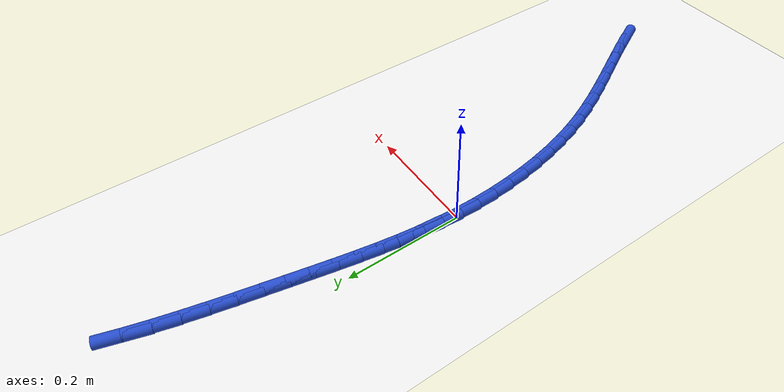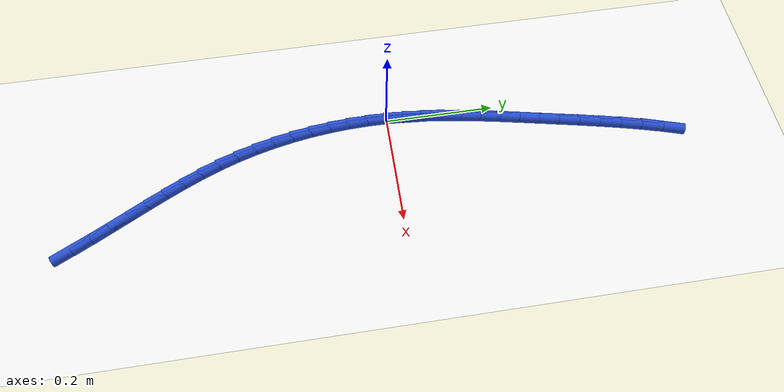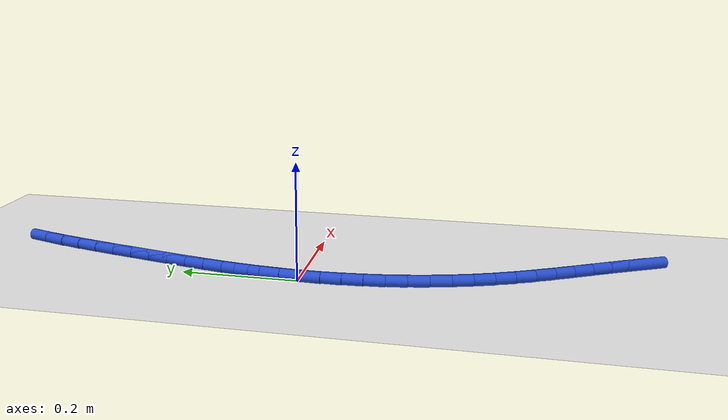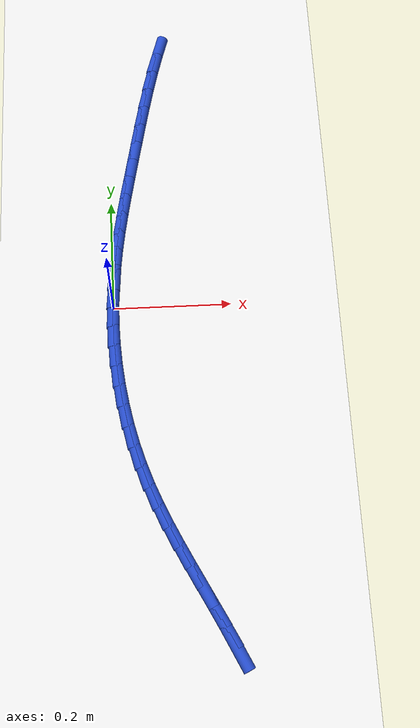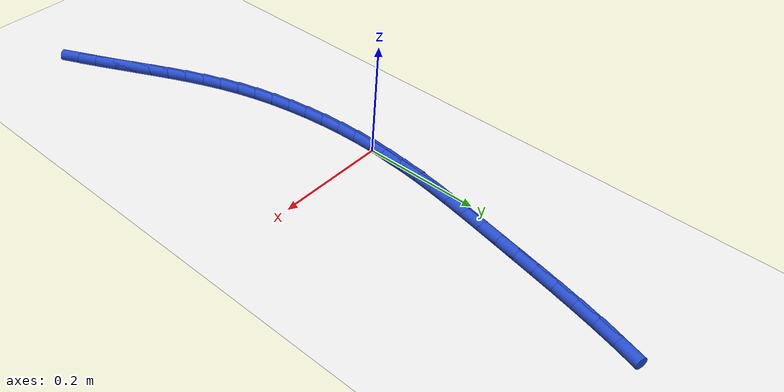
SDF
<sdf version="1.6">
 <world name="default">
  <model name="ground_plane">
   <static>1</static>
   <link name="link">
    <collision name="collision">
     <geometry><plane><normal>0 0 1</normal><size>100 100</size></plane></geometry>
     <surface><friction><ode><mu>100</mu><mu2>50</mu2></ode></friction></surface>
    </collision>
    <visual name="visual">
     <cast_shadows>0</cast_shadows>
     <geometry><plane><normal>0 0 1</normal><size>100 100</size></plane></geometry>
     <material>
      <script><uri>file://media/materials/scripts/gazebo.material</uri><name>Gazebo/WhiteGlow</name></script>
     </material>
    </visual>
   </link>
  </model>
  <model name="line">
   <link name="link_0">
    <pose>-5.204170427930421e-18 4.163336342344337e-17 0.01 0 1.57 1.5208849543965577</pose>
    <collision name="collision">
     <geometry><cylinder><radius>0.01</radius><length>0.08</length></cylinder></geometry>
    </collision>
    <visual name="visual">
     <material>
      <script><name>Gazebo/Blue</name><uri>file://media/materials/scripts/gazebo.material</uri></script>
     </material>
     <geometry><cylinder><radius>0.01</radius><length>0.08</length></cylinder></geometry>
    </visual>
   </link>
   <link name="link_1">
    <pose>0.0017199390480877182 0.034431243268915154 0.01 0 1.57 1.4837303100532857</pose>
    <collision name="collision">
     <geometry><cylinder><radius>0.01</radius><length>0.08</length></cylinder></geometry>
    </collision>
    <visual name="visual">
     <material>
      <script><name>Gazebo/Blue</name><uri>file://media/materials/scripts/gazebo.material</uri></script>
     </material>
     <geometry><cylinder><radius>0.01</radius><length>0.08</length></cylinder></geometry>
    </visual>
   </link>
   <link name="link_2">
    <pose>0.004702173828759835 0.06859721846147225 0.01 0 1.57 1.4511710865603584</pose>
    <collision name="collision">
     <geometry><cylinder><radius>0.01</radius><length>0.08</length></cylinder></geometry>
    </collision>
    <visual name="visual">
     <material>
      <script><name>Gazebo/Blue</name><uri>file://media/materials/scripts/gazebo.material</uri></script>
     </material>
     <geometry><cylinder><radius>0.01</radius><length>0.08</length></cylinder></geometry>
    </visual>
   </link>
   <link name="link_3">
    <pose>0.00879488424225968 0.10264663191672037 0.01 0 1.57 1.4236534798670728</pose>
    <collision name="collision">
     <geometry><cylinder><radius>0.01</radius><length>0.08</length></cylinder></geometry>
    </collision>
    <visual name="visual">
     <material>
      <script><name>Gazebo/Blue</name><uri>file://media/materials/scripts/gazebo.material</uri></script>
     </material>
     <geometry><cylinder><radius>0.01</radius><length>0.08</length></cylinder></geometry>
    </visual>
   </link>
   <link name="link_4">
    <pose>0.0138462501888306 0.1367281899737084 0.01 0 1.57 1.4014534340639775</pose>
    <collision name="collision">
     <geometry><cylinder><radius>0.01</radius><length>0.08</length></cylinder></geometry>
    </collision>
    <visual name="visual">
     <material>
      <script><name>Gazebo/Blue</name><uri>file://media/materials/scripts/gazebo.material</uri></script>
     </material>
     <geometry><cylinder><radius>0.01</radius><length>0.08</length></cylinder></geometry>
    </visual>
   </link>
   <link name="link_5">
    <pose>0.019704451568715944 0.17099059897148555 0.01 0 1.57 1.3846882370910742</pose>
    <collision name="collision">
     <geometry><cylinder><radius>0.01</radius><length>0.08</length></cylinder></geometry>
    </collision>
    <visual name="visual">
     <material>
      <script><name>Gazebo/Blue</name><uri>file://media/materials/scripts/gazebo.material</uri></script>
     </material>
     <geometry><cylinder><radius>0.01</radius><length>0.08</length></cylinder></geometry>
    </visual>
   </link>
   <link name="link_6">
    <pose>0.026217668282159032 0.20558256524910065 0.01 0 1.57 1.373335898831359</pose>
    <collision name="collision">
     <geometry><cylinder><radius>0.01</radius><length>0.08</length></cylinder></geometry>
    </collision>
    <visual name="visual">
     <material>
      <script><name>Gazebo/Blue</name><uri>file://media/materials/scripts/gazebo.material</uri></script>
     </material>
     <geometry><cylinder><radius>0.01</radius><length>0.08</length></cylinder></geometry>
    </visual>
   </link>
   <link name="link_7">
    <pose>0.03323408022940323 0.24065279514560292 0.01 0 1.57 1.3672576519073827</pose>
    <collision name="collision">
     <geometry><cylinder><radius>0.01</radius><length>0.08</length></cylinder></geometry>
    </collision>
    <visual name="visual">
     <material>
      <script><name>Gazebo/Blue</name><uri>file://media/materials/scripts/gazebo.material</uri></script>
     </material>
     <geometry><cylinder><radius>0.01</radius><length>0.08</length></cylinder></geometry>
    </visual>
   </link>
   <link name="link_8">
    <pose>0.04060186731069186 0.2763499950000411 0.01 0 1.57 1.3660140015924838</pose>
    <collision name="collision">
     <geometry><cylinder><radius>0.01</radius><length>0.08</length></cylinder></geometry>
    </collision>
    <visual name="visual">
     <material>
      <script><name>Gazebo/Blue</name><uri>file://media/materials/scripts/gazebo.material</uri></script>
     </material>
     <geometry><cylinder><radius>0.01</radius><length>0.08</length></cylinder></geometry>
    </visual>
   </link>
   <link name="link_9">
    <pose>0.04817533305242036 0.31281457818273206 0.01 0 1.57 1.3645071685165557</pose>
    <collision name="collision">
     <geometry><cylinder><radius>0.01</radius><length>0.08</length></cylinder></geometry>
    </collision>
    <visual name="visual">
     <material>
      <script><name>Gazebo/Blue</name><uri>file://media/materials/scripts/gazebo.material</uri></script>
     </material>
     <geometry><cylinder><radius>0.01</radius><length>0.08</length></cylinder></geometry>
    </visual>
   </link>
   <link name="link_10">
    <pose>0.05595473940783197 0.34998929271995866 0.01 0 1.57 1.3578804444189165</pose>
    <collision name="collision">
     <geometry><cylinder><radius>0.01</radius><length>0.08</length></cylinder></geometry>
    </collision>
    <visual name="visual">
     <material>
      <script><name>Gazebo/Blue</name><uri>file://media/materials/scripts/gazebo.material</uri></script>
     </material>
     <geometry><cylinder><radius>0.01</radius><length>0.08</length></cylinder></geometry>
    </visual>
   </link>
   <link name="link_11">
    <pose>0.06408920629358508 0.38761529457383775 0.01 0 1.57 1.3460044763426808</pose>
    <collision name="collision">
     <geometry><cylinder><radius>0.01</radius><length>0.08</length></cylinder></geometry>
    </collision>
    <visual name="visual">
     <material>
      <script><name>Gazebo/Blue</name><uri>file://media/materials/scripts/gazebo.material</uri></script>
     </material>
     <geometry><cylinder><radius>0.01</radius><length>0.08</length></cylinder></geometry>
    </visual>
   </link>
   <link name="link_12">
    <pose>0.07273455723014616 0.4254246612984661 0.01 0 1.57 1.3287923210549824</pose>
    <collision name="collision">
     <geometry><cylinder><radius>0.01</radius><length>0.08</length></cylinder></geometry>
    </collision>
    <visual name="visual">
     <material>
      <script><name>Gazebo/Blue</name><uri>file://media/materials/scripts/gazebo.material</uri></script>
     </material>
     <geometry><cylinder><radius>0.01</radius><length>0.08</length></cylinder></geometry>
    </visual>
   </link>
   <link name="link_13">
    <pose>0.08204661573798165 0.4631494704479401 0.01 0 1.57 1.3059859587979765</pose>
    <collision name="collision">
     <geometry><cylinder><radius>0.01</radius><length>0.08</length></cylinder></geometry>
    </collision>
    <visual name="visual">
     <material>
      <script><name>Gazebo/Blue</name><uri>file://media/materials/scripts/gazebo.material</uri></script>
     </material>
     <geometry><cylinder><radius>0.01</radius><length>0.08</length></cylinder></geometry>
    </visual>
   </link>
   <link name="link_14">
    <pose>0.09218120533755805 0.5005217995763565 0.01 0 1.57 1.2771600559592506</pose>
    <collision name="collision">
     <geometry><cylinder><radius>0.01</radius><length>0.08</length></cylinder></geometry>
    </collision>
    <visual name="visual">
     <material>
      <script><name>Gazebo/Blue</name><uri>file://media/materials/scripts/gazebo.material</uri></script>
     </material>
     <geometry><cylinder><radius>0.01</radius><length>0.08</length></cylinder></geometry>
    </visual>
   </link>
   <link name="link_193">
    <pose>0.1735288714875021 -0.5628341644015661 0.01 0 1.57 -1.1130954975053393</pose>
    <collision name="collision">
     <geometry><cylinder><radius>0.01</radius><length>0.08</length></cylinder></geometry>
    </collision>
    <visual name="visual">
     <material>
      <script><name>Gazebo/Blue</name><uri>file://media/materials/scripts/gazebo.material</uri></script>
     </material>
     <geometry><cylinder><radius>0.01</radius><length>0.08</length></cylinder></geometry>
    </visual>
   </link>
   <link name="link_194">
    <pose>0.15780180485975592 -0.5309067698016066 0.01 0 1.57 -1.0959766315829762</pose>
    <collision name="collision">
     <geometry><cylinder><radius>0.01</radius><length>0.08</length></cylinder></geometry>
    </collision>
    <visual name="visual">
     <material>
      <script><name>Gazebo/Blue</name><uri>file://media/materials/scripts/gazebo.material</uri></script>
     </material>
     <geometry><cylinder><radius>0.01</radius><length>0.08</length></cylinder></geometry>
    </visual>
   </link>
   <link name="link_195">
    <pose>0.14162732772343317 -0.49944161773603957 0.01 0 1.57 -1.0877248462134534</pose>
    <collision name="collision">
     <geometry><cylinder><radius>0.01</radius><length>0.08</length></cylinder></geometry>
    </collision>
    <visual name="visual">
     <material>
      <script><name>Gazebo/Blue</name><uri>file://media/materials/scripts/gazebo.material</uri></script>
     </material>
     <geometry><cylinder><radius>0.01</radius><length>0.08</length></cylinder></geometry>
    </visual>
   </link>
   <link name="link_196">
    <pose>0.12527695090095883 -0.4682696062689888 0.01 0 1.57 -1.0884968248988276</pose>
    <collision name="collision">
     <geometry><cylinder><radius>0.01</radius><length>0.08</length></cylinder></geometry>
    </collision>
    <visual name="visual">
     <material>
      <script><name>Gazebo/Blue</name><uri>file://media/materials/scripts/gazebo.material</uri></script>
     </material>
     <geometry><cylinder><radius>0.01</radius><length>0.08</length></cylinder></geometry>
    </visual>
   </link>
   <link name="link_197">
    <pose>0.10902218521475901 -0.4372216334645804 0.01 0 1.57 -1.0984103862782952</pose>
    <collision name="collision">
     <geometry><cylinder><radius>0.01</radius><length>0.08</length></cylinder></geometry>
    </collision>
    <visual name="visual">
     <material>
      <script><name>Gazebo/Blue</name><uri>file://media/materials/scripts/gazebo.material</uri></script>
     </material>
     <geometry><cylinder><radius>0.01</radius><length>0.08</length></cylinder></geometry>
    </visual>
   </link>
   <link name="link_198">
    <pose>0.09313454148725867 -0.4061285973869383 0.01 0 1.57 -1.1175406365261136</pose>
    <collision name="collision">
     <geometry><cylinder><radius>0.01</radius><length>0.08</length></cylinder></geometry>
    </collision>
    <visual name="visual">
     <material>
      <script><name>Gazebo/Blue</name><uri>file://media/materials/scripts/gazebo.material</uri></script>
     </material>
     <geometry><cylinder><radius>0.01</radius><length>0.08</length></cylinder></geometry>
    </visual>
   </link>
   <link name="link_199">
    <pose>0.07788553054088311 -0.3748213961001874 0.01 0 1.57 -1.1458933608980582</pose>
    <collision name="collision">
     <geometry><cylinder><radius>0.01</radius><length>0.08</length></cylinder></geometry>
    </collision>
    <visual name="visual">
     <material>
      <script><name>Gazebo/Blue</name><uri>file://media/materials/scripts/gazebo.material</uri></script>
     </material>
     <geometry><cylinder><radius>0.01</radius><length>0.08</length></cylinder></geometry>
    </visual>
   </link>
   <link name="link_200">
    <pose>0.06354666319805781 -0.34313092766845243 0.01 0 1.57 -1.1833557080597568</pose>
    <collision name="collision">
     <geometry><cylinder><radius>0.01</radius><length>0.08</length></cylinder></geometry>
    </collision>
    <visual name="visual">
     <material>
      <script><name>Gazebo/Blue</name><uri>file://media/materials/scripts/gazebo.material</uri></script>
     </material>
     <geometry><cylinder><radius>0.01</radius><length>0.08</length></cylinder></geometry>
    </visual>
   </link>
   <link name="link_201">
    <pose>0.05038945028120804 -0.31088809015585805 0.01 0 1.57 -1.2293914064668634</pose>
    <collision name="collision">
     <geometry><cylinder><radius>0.01</radius><length>0.08</length></cylinder></geometry>
    </collision>
    <visual name="visual">
     <material>
      <script><name>Gazebo/Blue</name><uri>file://media/materials/scripts/gazebo.material</uri></script>
     </material>
     <geometry><cylinder><radius>0.01</radius><length>0.08</length></cylinder></geometry>
    </visual>
   </link>
   <link name="link_202">
    <pose>0.03867904386862256 -0.2779305878666873 0.01 0 1.57 -1.2783960324914705</pose>
    <collision name="collision">
     <geometry><cylinder><radius>0.01</radius><length>0.08</length></cylinder></geometry>
    </collision>
    <visual name="visual">
     <material>
      <script><name>Gazebo/Blue</name><uri>file://media/materials/scripts/gazebo.material</uri></script>
     </material>
     <geometry><cylinder><radius>0.01</radius><length>0.08</length></cylinder></geometry>
    </visual>
   </link>
   <link name="link_203">
    <pose>0.028539395912640455 -0.24424726217680612 0.01 0 1.57 -1.325395930679693</pose>
    <collision name="collision">
     <geometry><cylinder><radius>0.01</radius><length>0.08</length></cylinder></geometry>
    </collision>
    <visual name="visual">
     <material>
      <script><name>Gazebo/Blue</name><uri>file://media/materials/scripts/gazebo.material</uri></script>
     </material>
     <geometry><cylinder><radius>0.01</radius><length>0.08</length></cylinder></geometry>
    </visual>
   </link>
   <link name="link_204">
    <pose>0.019956008612683644 -0.20997514760338024 0.01 0 1.57 -1.3705247447997142</pose>
    <collision name="collision">
     <geometry><cylinder><radius>0.01</radius><length>0.08</length></cylinder></geometry>
    </collision>
    <visual name="visual">
     <material>
      <script><name>Gazebo/Blue</name><uri>file://media/materials/scripts/gazebo.material</uri></script>
     </material>
     <geometry><cylinder><radius>0.01</radius><length>0.08</length></cylinder></geometry>
    </visual>
   </link>
   <link name="link_205">
    <pose>0.012908575565368662 -0.17525749604625984 0.01 0 1.57 -1.4141297716428867</pose>
    <collision name="collision">
     <geometry><cylinder><radius>0.01</radius><length>0.08</length></cylinder></geometry>
    </collision>
    <visual name="visual">
     <material>
      <script><name>Gazebo/Blue</name><uri>file://media/materials/scripts/gazebo.material</uri></script>
     </material>
     <geometry><cylinder><radius>0.01</radius><length>0.08</length></cylinder></geometry>
    </visual>
   </link>
   <link name="link_206">
    <pose>0.007376790367312061 -0.1402375594052953 0.01 0 1.57 -1.4565556683536205</pose>
    <collision name="collision">
     <geometry><cylinder><radius>0.01</radius><length>0.08</length></cylinder></geometry>
    </collision>
    <visual name="visual">
     <material>
      <script><name>Gazebo/Blue</name><uri>file://media/materials/scripts/gazebo.material</uri></script>
     </material>
     <geometry><cylinder><radius>0.01</radius><length>0.08</length></cylinder></geometry>
    </visual>
   </link>
   <link name="link_207">
    <pose>0.0033403466151303556 -0.10505858958033684 0.01 0 1.57 -1.4981462683494917</pose>
    <collision name="collision">
     <geometry><cylinder><radius>0.01</radius><length>0.08</length></cylinder></geometry>
    </collision>
    <visual name="visual">
     <material>
      <script><name>Gazebo/Blue</name><uri>file://media/materials/scripts/gazebo.material</uri></script>
     </material>
     <geometry><cylinder><radius>0.01</radius><length>0.08</length></cylinder></geometry>
    </visual>
   </link>
   <link name="link_208">
    <pose>0.0007789379054400909 -0.06986383847123465 0.01 0 1.57 -1.539248032402427</pose>
    <collision name="collision">
     <geometry><cylinder><radius>0.01</radius><length>0.08</length></cylinder></geometry>
    </collision>
    <visual name="visual">
     <material>
      <script><name>Gazebo/Blue</name><uri>file://media/materials/scripts/gazebo.material</uri></script>
     </material>
     <geometry><cylinder><radius>0.01</radius><length>0.08</length></cylinder></geometry>
    </visual>
   </link>
   <link name="link_209">
    <pose>-0.00032774216514221566 -0.0347965579778382 0.01 0 1.57 1.5613777953960108</pose>
    <collision name="collision">
     <geometry><cylinder><radius>0.01</radius><length>0.08</length></cylinder></geometry>
    </collision>
    <visual name="visual">
     <material>
      <script><name>Gazebo/Blue</name><uri>file://media/materials/scripts/gazebo.material</uri></script>
     </material>
     <geometry><cylinder><radius>0.01</radius><length>0.08</length></cylinder></geometry>
    </visual>
   </link>
   <link name="link_210">
    <pose>-3.469446951953614e-18 -1.8735013540549517e-16 0.01 0 1.57 1.52017854524749</pose>
    <collision name="collision">
     <geometry><cylinder><radius>0.01</radius><length>0.08</length></cylinder></geometry>
    </collision>
    <visual name="visual">
     <material>
      <script><name>Gazebo/Blue</name><uri>file://media/materials/scripts/gazebo.material</uri></script>
     </material>
     <geometry><cylinder><radius>0.01</radius><length>0.08</length></cylinder></geometry>
    </visual>
   </link>
   <link name="link_211">
    <pose>0.0017418579974832378 0.03438258356243158 0.01 0 1.57 1.4783588335355973</pose>
    <collision name="collision">
     <geometry><cylinder><radius>0.01</radius><length>0.08</length></cylinder></geometry>
    </collision>
    <visual name="visual">
     <material>
      <script><name>Gazebo/Blue</name><uri>file://media/materials/scripts/gazebo.material</uri></script>
     </material>
     <geometry><cylinder><radius>0.01</radius><length>0.08</length></cylinder></geometry>
    </visual>
   </link>
   <link name="link_212">
    <pose>0.004877525423924223 0.06820794080960763 0.01 0 1.57 1.4994082035006813</pose>
    <collision name="collision">
     <geometry><cylinder><radius>0.01</radius><length>0.08</length></cylinder></geometry>
    </collision>
    <visual name="visual">
     <material>
      <script><name>Gazebo/Blue</name><uri>file://media/materials/scripts/gazebo.material</uri></script>
     </material>
     <geometry><cylinder><radius>0.01</radius><length>0.08</length></cylinder></geometry>
    </visual>
   </link>
  </model>
 </world>
</sdf>
